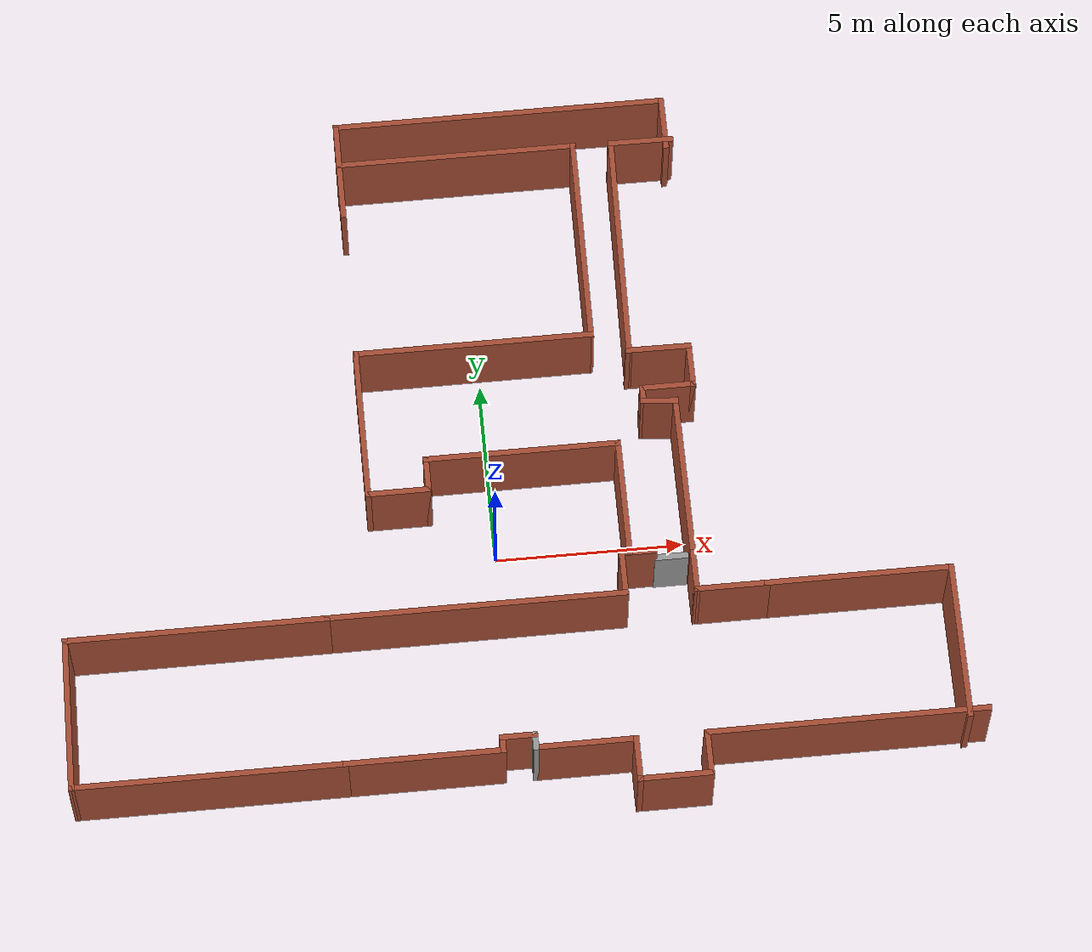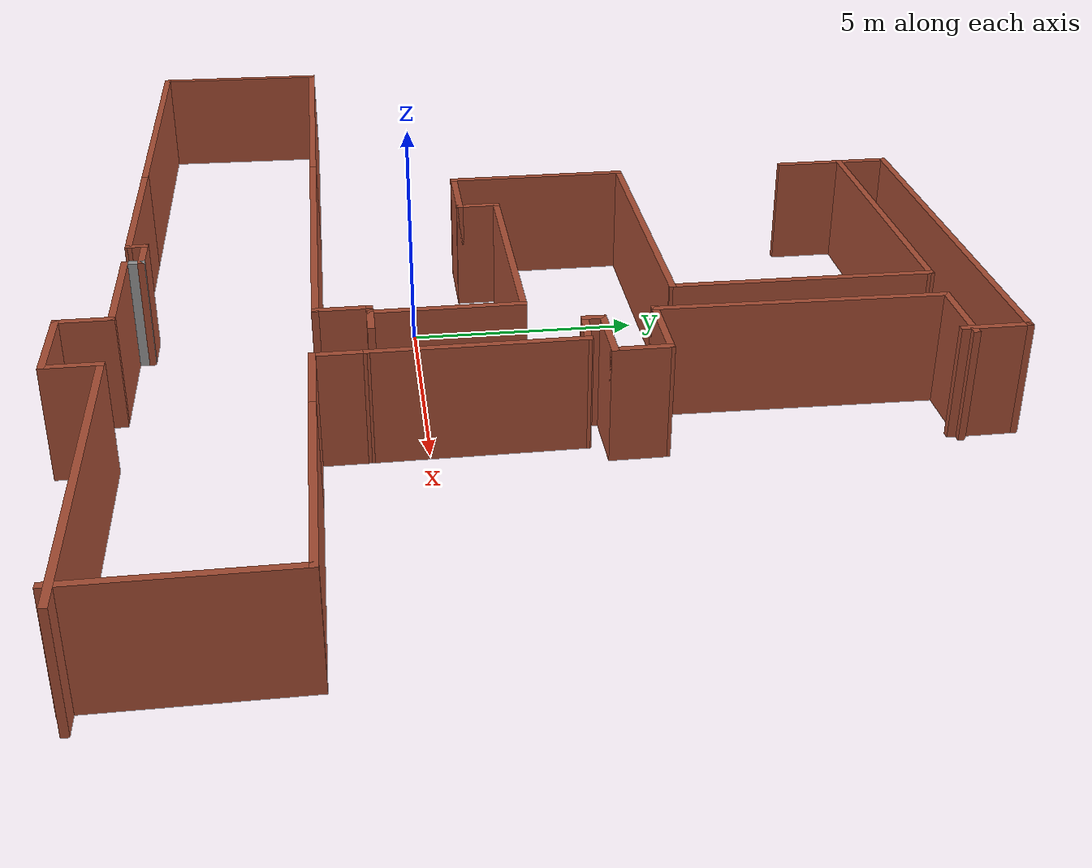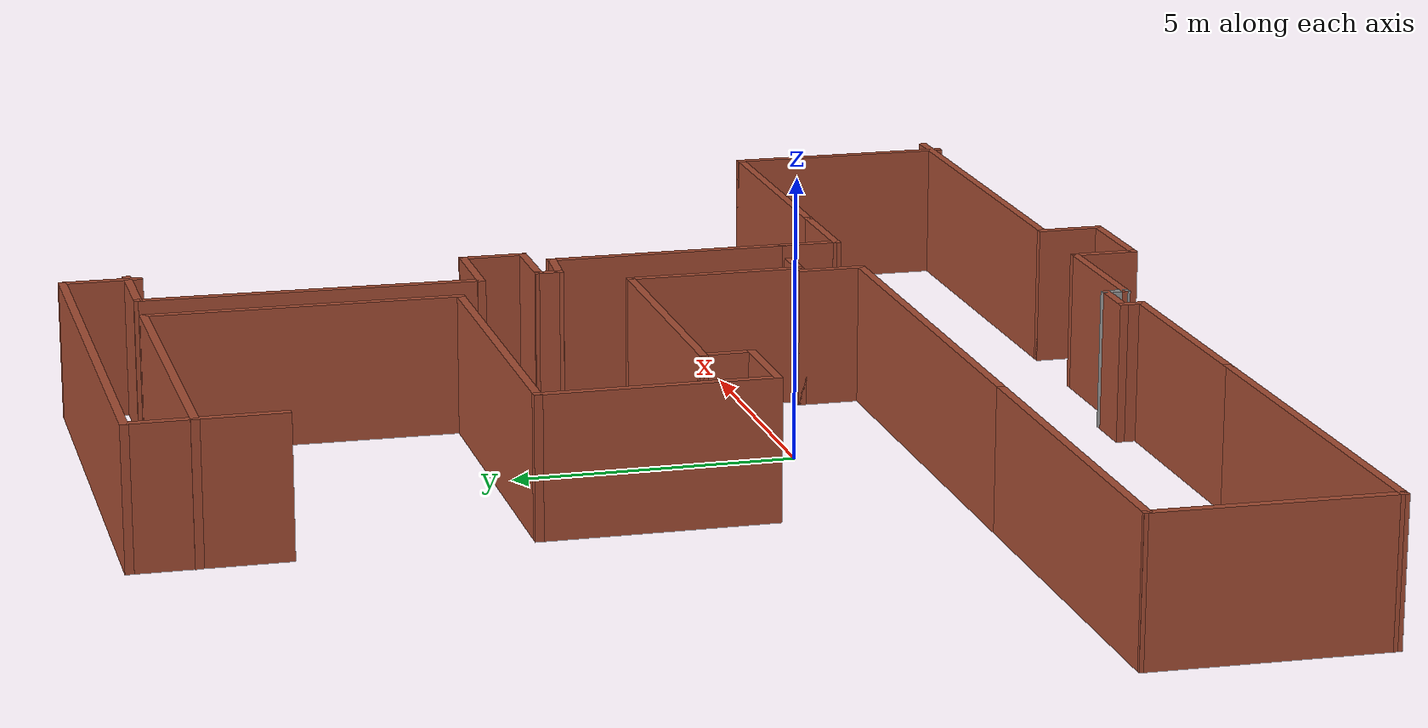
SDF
<?xml version='1.0'?>
<sdf version='1.7'>
  <model name='F1A1'>
    <pose>0.358057 2.33732 0 0 -0 0</pose>
    <link name='Door_0'>
      <collision name='Door_0_Collision'>
        <geometry>
          <box>
            <size>0.9 0.17 2</size>
          </box>
        </geometry>
        <pose>0 0 1 0 -0 0</pose>
      </collision>
      <visual name='Door_0_Visual'>
        <pose>0 0 1 0 -0 0</pose>
        <geometry>
          <box>
            <size>0.9 0.17 2</size>
          </box>
        </geometry>
        <material>
          <script>
            <uri>file://media/materials/scripts/gazebo.material</uri>
            <name>Gazebo/Grey</name>
          </script>
        </material>
      </visual>
      <pose>4.18025 -3.39198 0 0 -0 0</pose>
    </link>
    <link name='Wall_0'>
      <collision name='Wall_0_Collision'>
        <geometry>
          <box>
            <size>1 0.15 2.5</size>
          </box>
        </geometry>
        <pose>0 0 1.25 0 -0 0</pose>
      </collision>
      <visual name='Wall_0_Visual'>
        <pose>0 0 1.25 0 -0 0</pose>
        <geometry>
          <box>
            <size>1 0.15 2.5</size>
          </box>
        </geometry>
        <material>
          <script>
            <uri>file://media/materials/scripts/gazebo.material</uri>
            <name>Gazebo/Bricks</name>
          </script>
          <ambient>1 1 1 1</ambient>
        </material>
        <meta>
          <layer>0</layer>
        </meta>
      </visual>
      <pose>3.28569 -3.37459 0 0 -0 3.14159</pose>
    </link>
    <link name='Wall_1'>
      <collision name='Wall_1_Collision'>
        <geometry>
          <box>
            <size>1.25 0.15 2.5</size>
          </box>
        </geometry>
        <pose>0 0 1.25 0 -0 0</pose>
      </collision>
      <visual name='Wall_1_Visual'>
        <pose>0 0 1.25 0 -0 0</pose>
        <geometry>
          <box>
            <size>1.25 0.15 2.5</size>
          </box>
        </geometry>
        <material>
          <script>
            <uri>file://media/materials/scripts/gazebo.material</uri>
            <name>Gazebo/Bricks</name>
          </script>
          <ambient>1 1 1 1</ambient>
        </material>
        <meta>
          <layer>0</layer>
        </meta>
      </visual>
      <pose>2.86069 -3.92459 0 0 -0 -1.5708</pose>
    </link>
    <link name='Wall_10'>
      <collision name='Wall_10_Collision'>
        <geometry>
          <box>
            <size>1 0.15 2.5</size>
          </box>
        </geometry>
        <pose>0 0 1.25 0 -0 0</pose>
      </collision>
      <visual name='Wall_10_Visual'>
        <pose>0 0 1.25 0 -0 0</pose>
        <geometry>
          <box>
            <size>1 0.15 2.5</size>
          </box>
        </geometry>
        <material>
          <script>
            <uri>file://media/materials/scripts/gazebo.material</uri>
            <name>Gazebo/Bricks</name>
          </script>
          <ambient>1 1 1 1</ambient>
        </material>
        <meta>
          <layer>0</layer>
        </meta>
      </visual>
      <pose>-0.29922 -8.16429 0 0 -0 3.14159</pose>
    </link>
    <link name='Wall_11'>
      <collision name='Wall_11_Collision'>
        <geometry>
          <box>
            <size>0.5 0.15 2.5</size>
          </box>
        </geometry>
        <pose>0 0 1.25 0 -0 0</pose>
      </collision>
      <visual name='Wall_11_Visual'>
        <pose>0 0 1.25 0 -0 0</pose>
        <geometry>
          <box>
            <size>0.5 0.15 2.5</size>
          </box>
        </geometry>
        <material>
          <script>
            <uri>file://media/materials/scripts/gazebo.material</uri>
            <name>Gazebo/Bricks</name>
          </script>
          <ambient>1 1 1 1</ambient>
        </material>
        <meta>
          <layer>0</layer>
        </meta>
      </visual>
      <pose>-0.72422 -8.33929 0 0 -0 -1.5708</pose>
    </link>
    <link name='Wall_12'>
      <collision name='Wall_12_Collision'>
        <geometry>
          <box>
            <size>4.25 0.15 2.5</size>
          </box>
        </geometry>
        <pose>0 0 1.25 0 -0 0</pose>
      </collision>
      <visual name='Wall_12_Visual'>
        <pose>0 0 1.25 0 -0 0</pose>
        <geometry>
          <box>
            <size>4.25 0.15 2.5</size>
          </box>
        </geometry>
        <material>
          <script>
            <uri>file://media/materials/scripts/gazebo.material</uri>
            <name>Gazebo/Bricks</name>
          </script>
          <ambient>1 1 1 1</ambient>
        </material>
        <meta>
          <layer>0</layer>
        </meta>
      </visual>
      <pose>-2.77422 -8.51429 0 0 -0 3.14159</pose>
    </link>
    <link name='Wall_2'>
      <collision name='Wall_2_Collision'>
        <geometry>
          <box>
            <size>8 0.15 2.5</size>
          </box>
        </geometry>
        <pose>0 0 1.25 0 -0 0</pose>
      </collision>
      <visual name='Wall_2_Visual'>
        <pose>0 0 1.25 0 -0 0</pose>
        <geometry>
          <box>
            <size>8 0.15 2.5</size>
          </box>
        </geometry>
        <material>
          <script>
            <uri>file://media/materials/scripts/gazebo.material</uri>
            <name>Gazebo/Bricks</name>
          </script>
          <ambient>1 1 1 1</ambient>
        </material>
        <meta>
          <layer>0</layer>
        </meta>
      </visual>
      <pose>-1.06431 -4.47459 0 0 -0 3.14159</pose>
    </link>
    <link name='Wall_21'>
      <collision name='Wall_21_Collision'>
        <geometry>
          <box>
            <size>1.5 0.15 2.5</size>
          </box>
        </geometry>
        <pose>0 0 1.25 0 -0 0</pose>
      </collision>
      <visual name='Wall_21_Visual'>
        <pose>0 0 1.25 0 -0 0</pose>
        <geometry>
          <box>
            <size>1.5 0.15 2.5</size>
          </box>
        </geometry>
        <material>
          <script>
            <uri>file://media/materials/scripts/gazebo.material</uri>
            <name>Gazebo/Bricks</name>
          </script>
          <ambient>1 1 1 1</ambient>
        </material>
        <meta>
          <layer>0</layer>
        </meta>
      </visual>
      <pose>4.54927 1.25298 0 0 -0 0</pose>
    </link>
    <link name='Wall_22'>
      <collision name='Wall_22_Collision'>
        <geometry>
          <box>
            <size>1.25 0.15 2.5</size>
          </box>
        </geometry>
        <pose>0 0 1.25 0 -0 0</pose>
      </collision>
      <visual name='Wall_22_Visual'>
        <pose>0 0 1.25 0 -0 0</pose>
        <geometry>
          <box>
            <size>1.25 0.15 2.5</size>
          </box>
        </geometry>
        <material>
          <script>
            <uri>file://media/materials/scripts/gazebo.material</uri>
            <name>Gazebo/Bricks</name>
          </script>
          <ambient>1 1 1 1</ambient>
        </material>
        <meta>
          <layer>0</layer>
        </meta>
      </visual>
      <pose>5.22427 1.80298 0 0 -0 1.5708</pose>
    </link>
    <link name='Wall_46'>
      <collision name='Wall_46_Collision'>
        <geometry>
          <box>
            <size>1.5 0.15 2.5</size>
          </box>
        </geometry>
        <pose>0 0 1.25 0 -0 0</pose>
      </collision>
      <visual name='Wall_46_Visual'>
        <pose>0 0 1.25 0 -0 0</pose>
        <geometry>
          <box>
            <size>1.5 0.15 2.5</size>
          </box>
        </geometry>
        <material>
          <script>
            <uri>file://media/materials/scripts/gazebo.material</uri>
            <name>Gazebo/Bricks</name>
          </script>
          <ambient>1 1 1 1</ambient>
        </material>
        <meta>
          <layer>0</layer>
        </meta>
      </visual>
      <pose>5.22427 8.93929 0 0 -0 1.5708</pose>
    </link>
    <link name='Wall_47'>
      <collision name='Wall_47_Collision'>
        <geometry>
          <box>
            <size>9 0.15 2.5</size>
          </box>
        </geometry>
        <pose>0 0 1.25 0 -0 0</pose>
      </collision>
      <visual name='Wall_47_Visual'>
        <pose>0 0 1.25 0 -0 0</pose>
        <geometry>
          <box>
            <size>9 0.15 2.5</size>
          </box>
        </geometry>
        <material>
          <script>
            <uri>file://media/materials/scripts/gazebo.material</uri>
            <name>Gazebo/Bricks</name>
          </script>
          <ambient>1 1 1 1</ambient>
        </material>
        <meta>
          <layer>0</layer>
        </meta>
      </visual>
      <pose>0.799273 9.61429 0 0 -0 3.14159</pose>
    </link>
    <link name='Wall_48'>
      <collision name='Wall_48_Collision'>
        <geometry>
          <box>
            <size>2.75 0.15 2.5</size>
          </box>
        </geometry>
        <pose>0 0 1.25 0 -0 0</pose>
      </collision>
      <visual name='Wall_48_Visual'>
        <pose>0 0 1.25 0 -0 0</pose>
        <geometry>
          <box>
            <size>2.75 0.15 2.5</size>
          </box>
        </geometry>
        <material>
          <script>
            <uri>file://media/materials/scripts/gazebo.material</uri>
            <name>Gazebo/Bricks</name>
          </script>
          <ambient>1 1 1 1</ambient>
        </material>
        <meta>
          <layer>0</layer>
        </meta>
      </visual>
      <pose>-3.62573 8.31429 0 0 -0 -1.5708</pose>
    </link>
    <link name='Wall_5'>
      <collision name='Wall_5_Collision'>
        <geometry>
          <box>
            <size>2 0.15 2.5</size>
          </box>
        </geometry>
        <pose>0 0 1.25 0 -0 0</pose>
      </collision>
      <visual name='Wall_5_Visual'>
        <pose>0 0 1.25 0 -0 0</pose>
        <geometry>
          <box>
            <size>2 0.15 2.5</size>
          </box>
        </geometry>
        <material>
          <script>
            <uri>file://media/materials/scripts/gazebo.material</uri>
            <name>Gazebo/Bricks</name>
          </script>
          <ambient>1 1 1 1</ambient>
        </material>
        <meta>
          <layer>0</layer>
        </meta>
      </visual>
      <pose>5.64927 -4.54702 0 0 -0 3.14159</pose>
    </link>
    <link name='Wall_52'>
      <collision name='Wall_52_Collision'>
        <geometry>
          <box>
            <size>5.71426 0.15 2.5</size>
          </box>
        </geometry>
        <pose>0 0 1.25 0 -0 0</pose>
      </collision>
      <visual name='Wall_52_Visual'>
        <pose>0 0 1.25 0 -0 0</pose>
        <geometry>
          <box>
            <size>5.71426 0.15 2.5</size>
          </box>
        </geometry>
        <material>
          <script>
            <uri>file://media/materials/scripts/gazebo.material</uri>
            <name>Gazebo/Bricks</name>
          </script>
          <ambient>1 1 1 1</ambient>
        </material>
        <meta>
          <layer>0</layer>
        </meta>
      </visual>
      <pose>2.68615 5.70782 0 0 -0 -1.57934</pose>
    </link>
    <link name='Wall_53'>
      <collision name='Wall_53_Collision'>
        <geometry>
          <box>
            <size>6.44182 0.15 2.5</size>
          </box>
        </geometry>
        <pose>0 0 1.25 0 -0 0</pose>
      </collision>
      <visual name='Wall_53_Visual'>
        <pose>0 0 1.25 0 -0 0</pose>
        <geometry>
          <box>
            <size>6.44182 0.15 2.5</size>
          </box>
        </geometry>
        <material>
          <script>
            <uri>file://media/materials/scripts/gazebo.material</uri>
            <name>Gazebo/Bricks</name>
          </script>
          <ambient>1 1 1 1</ambient>
        </material>
        <meta>
          <layer>0</layer>
        </meta>
      </visual>
      <pose>-0.483526 2.92577 0 0 -0 3.14159</pose>
    </link>
    <link name='Wall_57'>
      <collision name='Wall_57_Collision'>
        <geometry>
          <box>
            <size>4.17991 0.15 2.5</size>
          </box>
        </geometry>
        <pose>0 0 1.25 0 -0 0</pose>
      </collision>
      <visual name='Wall_57_Visual'>
        <pose>0 0 1.25 0 -0 0</pose>
        <geometry>
          <box>
            <size>4.17991 0.15 2.5</size>
          </box>
        </geometry>
        <material>
          <script>
            <uri>file://media/materials/scripts/gazebo.material</uri>
            <name>Gazebo/Bricks</name>
          </script>
          <ambient>1 1 1 1</ambient>
        </material>
        <meta>
          <layer>0</layer>
        </meta>
      </visual>
      <pose>-3.62944 0.910864 0 0 -0 -1.5708</pose>
    </link>
    <link name='Wall_58'>
      <collision name='Wall_58_Collision'>
        <geometry>
          <box>
            <size>1.75 0.15 2.5</size>
          </box>
        </geometry>
        <pose>0 0 1.25 0 -0 0</pose>
      </collision>
      <visual name='Wall_58_Visual'>
        <pose>0 0 1.25 0 -0 0</pose>
        <geometry>
          <box>
            <size>1.75 0.15 2.5</size>
          </box>
        </geometry>
        <material>
          <script>
            <uri>file://media/materials/scripts/gazebo.material</uri>
            <name>Gazebo/Bricks</name>
          </script>
          <ambient>1 1 1 1</ambient>
        </material>
        <meta>
          <layer>0</layer>
        </meta>
      </visual>
      <pose>-2.82944 -1.10404 0 0 -0 0</pose>
    </link>
    <link name='Wall_59'>
      <collision name='Wall_59_Collision'>
        <geometry>
          <box>
            <size>1 0.15 2.5</size>
          </box>
        </geometry>
        <pose>0 0 1.25 0 -0 0</pose>
      </collision>
      <visual name='Wall_59_Visual'>
        <pose>0 0 1.25 0 -0 0</pose>
        <geometry>
          <box>
            <size>1 0.15 2.5</size>
          </box>
        </geometry>
        <material>
          <script>
            <uri>file://media/materials/scripts/gazebo.material</uri>
            <name>Gazebo/Bricks</name>
          </script>
          <ambient>1 1 1 1</ambient>
        </material>
        <meta>
          <layer>0</layer>
        </meta>
      </visual>
      <pose>-2.02944 -0.679041 0 0 -0 1.5708</pose>
    </link>
    <link name='Wall_6'>
      <collision name='Wall_6_Collision'>
        <geometry>
          <box>
            <size>1.18134 0.15 2.5</size>
          </box>
        </geometry>
        <pose>0 0 1.25 0 -0 0</pose>
      </collision>
      <visual name='Wall_6_Visual'>
        <pose>0 0 1.25 0 -0 0</pose>
        <geometry>
          <box>
            <size>1.18134 0.15 2.5</size>
          </box>
        </geometry>
        <material>
          <script>
            <uri>file://media/materials/scripts/gazebo.material</uri>
            <name>Gazebo/Bricks</name>
          </script>
          <ambient>1 1 1 1</ambient>
        </material>
        <meta>
          <layer>0</layer>
        </meta>
      </visual>
      <pose>4.72469 -4.03135 0 0 -0 1.56998</pose>
    </link>
    <link name='Wall_60'>
      <collision name='Wall_60_Collision'>
        <geometry>
          <box>
            <size>5.25 0.15 2.5</size>
          </box>
        </geometry>
        <pose>0 0 1.25 0 -0 0</pose>
      </collision>
      <visual name='Wall_60_Visual'>
        <pose>0 0 1.25 0 -0 0</pose>
        <geometry>
          <box>
            <size>5.25 0.15 2.5</size>
          </box>
        </geometry>
        <material>
          <script>
            <uri>file://media/materials/scripts/gazebo.material</uri>
            <name>Gazebo/Bricks</name>
          </script>
          <ambient>1 1 1 1</ambient>
        </material>
        <meta>
          <layer>0</layer>
        </meta>
      </visual>
      <pose>0.520563 -0.254041 0 0 -0 0</pose>
    </link>
    <link name='Wall_63'>
      <collision name='Wall_63_Collision'>
        <geometry>
          <box>
            <size>3.25 0.15 2.5</size>
          </box>
        </geometry>
        <pose>0 0 1.25 0 -0 0</pose>
      </collision>
      <visual name='Wall_63_Visual'>
        <pose>0 0 1.25 0 -0 0</pose>
        <geometry>
          <box>
            <size>3.25 0.15 2.5</size>
          </box>
        </geometry>
        <material>
          <script>
            <uri>file://media/materials/scripts/gazebo.material</uri>
            <name>Gazebo/Bricks</name>
          </script>
          <ambient>1 1 1 1</ambient>
        </material>
        <meta>
          <layer>0</layer>
        </meta>
      </visual>
      <pose>3.07056 -1.80404 0 0 -0 -1.5708</pose>
    </link>
    <link name='Wall_65'>
      <collision name='Wall_65_Collision'>
        <geometry>
          <box>
            <size>1.25 0.15 2.5</size>
          </box>
        </geometry>
        <pose>0 0 1.25 0 -0 0</pose>
      </collision>
      <visual name='Wall_65_Visual'>
        <pose>0 0 1.25 0 -0 0</pose>
        <geometry>
          <box>
            <size>1.25 0.15 2.5</size>
          </box>
        </geometry>
        <material>
          <script>
            <uri>file://media/materials/scripts/gazebo.material</uri>
            <name>Gazebo/Bricks</name>
          </script>
          <ambient>1 1 1 1</ambient>
        </material>
        <meta>
          <layer>0</layer>
        </meta>
      </visual>
      <pose>2.72578 -9.06429 0 0 -0 -1.5708</pose>
    </link>
    <link name='Wall_66'>
      <collision name='Wall_66_Collision'>
        <geometry>
          <box>
            <size>2 0.15 2.5</size>
          </box>
        </geometry>
        <pose>0 0 1.25 0 -0 0</pose>
      </collision>
      <visual name='Wall_66_Visual'>
        <pose>0 0 1.25 0 -0 0</pose>
        <geometry>
          <box>
            <size>2 0.15 2.5</size>
          </box>
        </geometry>
        <material>
          <script>
            <uri>file://media/materials/scripts/gazebo.material</uri>
            <name>Gazebo/Bricks</name>
          </script>
          <ambient>1 1 1 1</ambient>
        </material>
        <meta>
          <layer>0</layer>
        </meta>
      </visual>
      <pose>3.65078 -9.61429 0 0 -0 0</pose>
    </link>
    <link name='Wall_67'>
      <collision name='Wall_67_Collision'>
        <geometry>
          <box>
            <size>1.25 0.15 2.5</size>
          </box>
        </geometry>
        <pose>0 0 1.25 0 -0 0</pose>
      </collision>
      <visual name='Wall_67_Visual'>
        <pose>0 0 1.25 0 -0 0</pose>
        <geometry>
          <box>
            <size>1.25 0.15 2.5</size>
          </box>
        </geometry>
        <material>
          <script>
            <uri>file://media/materials/scripts/gazebo.material</uri>
            <name>Gazebo/Bricks</name>
          </script>
          <ambient>1 1 1 1</ambient>
        </material>
        <meta>
          <layer>0</layer>
        </meta>
      </visual>
      <pose>4.57578 -9.06429 0 0 -0 1.5708</pose>
    </link>
    <link name='Wall_68'>
      <collision name='Wall_68_Collision'>
        <geometry>
          <box>
            <size>7.5 0.15 2.5</size>
          </box>
        </geometry>
        <pose>0 0 1.25 0 -0 0</pose>
      </collision>
      <visual name='Wall_68_Visual'>
        <pose>0 0 1.25 0 -0 0</pose>
        <geometry>
          <box>
            <size>7.5 0.15 2.5</size>
          </box>
        </geometry>
        <material>
          <script>
            <uri>file://media/materials/scripts/gazebo.material</uri>
            <name>Gazebo/Bricks</name>
          </script>
          <ambient>1 1 1 1</ambient>
        </material>
        <meta>
          <layer>0</layer>
        </meta>
      </visual>
      <pose>8.25078 -8.51429 0 0 -0 0</pose>
    </link>
    <link name='Wall_70'>
      <collision name='Wall_70_Collision'>
        <geometry>
          <box>
            <size>5 0.15 2.5</size>
          </box>
        </geometry>
        <pose>0 0 1.25 0 -0 0</pose>
      </collision>
      <visual name='Wall_70_Visual'>
        <pose>0 0 1.25 0 -0 0</pose>
        <geometry>
          <box>
            <size>5 0.15 2.5</size>
          </box>
        </geometry>
        <material>
          <script>
            <uri>file://media/materials/scripts/gazebo.material</uri>
            <name>Gazebo/Bricks</name>
          </script>
          <ambient>1 1 1 1</ambient>
        </material>
        <meta>
          <layer>0</layer>
        </meta>
      </visual>
      <pose>8.99927 -4.54702 0 0 -0 0</pose>
    </link>
    <link name='Wall_72'>
      <collision name='Wall_72_Collision'>
        <geometry>
          <box>
            <size>4.25 0.15 2.5</size>
          </box>
        </geometry>
        <pose>0 0 1.25 0 -0 0</pose>
      </collision>
      <visual name='Wall_72_Visual'>
        <pose>0 0 1.25 0 -0 0</pose>
        <geometry>
          <box>
            <size>4.25 0.15 2.5</size>
          </box>
        </geometry>
        <material>
          <script>
            <uri>file://media/materials/scripts/gazebo.material</uri>
            <name>Gazebo/Bricks</name>
          </script>
          <ambient>1 1 1 1</ambient>
        </material>
        <meta>
          <layer>0</layer>
        </meta>
      </visual>
      <pose>11.4243 -6.59702 0 0 -0 -1.5708</pose>
    </link>
    <link name='Wall_74'>
      <collision name='Wall_74_Collision'>
        <geometry>
          <box>
            <size>7 0.15 2.5</size>
          </box>
        </geometry>
        <pose>0 0 1.25 0 -0 0</pose>
      </collision>
      <visual name='Wall_74_Visual'>
        <pose>0 0 1.25 0 -0 0</pose>
        <geometry>
          <box>
            <size>7 0.15 2.5</size>
          </box>
        </geometry>
        <material>
          <script>
            <uri>file://media/materials/scripts/gazebo.material</uri>
            <name>Gazebo/Bricks</name>
          </script>
          <ambient>1 1 1 1</ambient>
        </material>
        <meta>
          <layer>0</layer>
        </meta>
      </visual>
      <pose>-8.41431 -4.47459 0 0 -0 3.14159</pose>
    </link>
    <link name='Wall_76'>
      <collision name='Wall_76_Collision'>
        <geometry>
          <box>
            <size>7.25 0.15 2.5</size>
          </box>
        </geometry>
        <pose>0 0 1.25 0 -0 0</pose>
      </collision>
      <visual name='Wall_76_Visual'>
        <pose>0 0 1.25 0 -0 0</pose>
        <geometry>
          <box>
            <size>7.25 0.15 2.5</size>
          </box>
        </geometry>
        <material>
          <script>
            <uri>file://media/materials/scripts/gazebo.material</uri>
            <name>Gazebo/Bricks</name>
          </script>
          <ambient>1 1 1 1</ambient>
        </material>
        <meta>
          <layer>0</layer>
        </meta>
      </visual>
      <pose>-8.37422 -8.51429 0 0 -0 3.14159</pose>
    </link>
    <link name='Wall_78'>
      <collision name='Wall_78_Collision'>
        <geometry>
          <box>
            <size>4.19059 0.15 2.5</size>
          </box>
        </geometry>
        <pose>0 0 1.25 0 -0 0</pose>
      </collision>
      <visual name='Wall_78_Visual'>
        <pose>0 0 1.25 0 -0 0</pose>
        <geometry>
          <box>
            <size>4.19059 0.15 2.5</size>
          </box>
        </geometry>
        <material>
          <script>
            <uri>file://media/materials/scripts/gazebo.material</uri>
            <name>Gazebo/Bricks</name>
          </script>
          <ambient>1 1 1 1</ambient>
        </material>
        <meta>
          <layer>0</layer>
        </meta>
      </visual>
      <pose>-11.8818 -6.49444 0 0 -0 -1.59181</pose>
    </link>
    <link name='Wall_8'>
      <collision name='Wall_8_Collision'>
        <geometry>
          <box>
            <size>2.75 0.15 2.5</size>
          </box>
        </geometry>
        <pose>0 0 1.25 0 -0 0</pose>
      </collision>
      <visual name='Wall_8_Visual'>
        <pose>0 0 1.25 0 -0 0</pose>
        <geometry>
          <box>
            <size>2.75 0.15 2.5</size>
          </box>
        </geometry>
        <material>
          <script>
            <uri>file://media/materials/scripts/gazebo.material</uri>
            <name>Gazebo/Bricks</name>
          </script>
          <ambient>1 1 1 1</ambient>
        </material>
        <meta>
          <layer>0</layer>
        </meta>
      </visual>
      <pose>1.42578 -8.51429 0 0 -0 3.14159</pose>
    </link>
    <link name='Wall_80'>
      <collision name='Wall_80_Collision'>
        <geometry>
          <box>
            <size>1.00361 0.15 2.5</size>
          </box>
        </geometry>
        <pose>0 0 1.25 0 -0 0</pose>
      </collision>
      <visual name='Wall_80_Visual'>
        <pose>0 0 1.25 0 -0 0</pose>
        <geometry>
          <box>
            <size>1.00361 0.15 2.5</size>
          </box>
        </geometry>
        <material>
          <script>
            <uri>file://media/materials/scripts/gazebo.material</uri>
            <name>Gazebo/Bricks</name>
          </script>
          <ambient>1 1 1 1</ambient>
        </material>
        <meta>
          <layer>0</layer>
        </meta>
      </visual>
      <pose>4.2863 0.849866 0 0 -0 3.06107</pose>
    </link>
    <link name='Wall_81'>
      <collision name='Wall_81_Collision'>
        <geometry>
          <box>
            <size>0.519022 0.15 2.5</size>
          </box>
        </geometry>
        <pose>0 0 1.25 0 -0 0</pose>
      </collision>
      <visual name='Wall_81_Visual'>
        <pose>0 0 1.25 0 -0 0</pose>
        <geometry>
          <box>
            <size>0.519022 0.15 2.5</size>
          </box>
        </geometry>
        <material>
          <script>
            <uri>file://media/materials/scripts/gazebo.material</uri>
            <name>Gazebo/Bricks</name>
          </script>
          <ambient>1 1 1 1</ambient>
        </material>
        <meta>
          <layer>0</layer>
        </meta>
      </visual>
      <pose>3.86758 1.06859 0 0 -0 1.53451</pose>
    </link>
    <link name='Wall_84'>
      <collision name='Wall_84_Collision'>
        <geometry>
          <box>
            <size>4.48124 0.15 2.5</size>
          </box>
        </geometry>
        <pose>0 0 1.25 0 -0 0</pose>
      </collision>
      <visual name='Wall_84_Visual'>
        <pose>0 0 1.25 0 -0 0</pose>
        <geometry>
          <box>
            <size>4.48124 0.15 2.5</size>
          </box>
        </geometry>
        <material>
          <script>
            <uri>file://media/materials/scripts/gazebo.material</uri>
            <name>Gazebo/Bricks</name>
          </script>
          <ambient>1 1 1 1</ambient>
        </material>
        <meta>
          <layer>0</layer>
        </meta>
      </visual>
      <pose>4.71842 -1.33123 0 0 -0 1.57389</pose>
    </link>
    <link name='Wall_86'>
      <collision name='Wall_86_Collision'>
        <geometry>
          <box>
            <size>6.5 0.15 2.5</size>
          </box>
        </geometry>
        <pose>0 0 1.25 0 -0 0</pose>
      </collision>
      <visual name='Wall_86_Visual'>
        <pose>0 0 1.25 0 -0 0</pose>
        <geometry>
          <box>
            <size>6.5 0.15 2.5</size>
          </box>
        </geometry>
        <material>
          <script>
            <uri>file://media/materials/scripts/gazebo.material</uri>
            <name>Gazebo/Bricks</name>
          </script>
          <ambient>1 1 1 1</ambient>
        </material>
        <meta>
          <layer>0</layer>
        </meta>
      </visual>
      <pose>-0.46508 8.48987 0 0 -0 3.14159</pose>
    </link>
    <link name='Wall_88'>
      <collision name='Wall_88_Collision'>
        <geometry>
          <box>
            <size>1.76967 0.15 2.5</size>
          </box>
        </geometry>
        <pose>0 0 1.25 0 -0 0</pose>
      </collision>
      <visual name='Wall_88_Visual'>
        <pose>0 0 1.25 0 -0 0</pose>
        <geometry>
          <box>
            <size>1.76967 0.15 2.5</size>
          </box>
        </geometry>
        <material>
          <script>
            <uri>file://media/materials/scripts/gazebo.material</uri>
            <name>Gazebo/Bricks</name>
          </script>
          <ambient>1 1 1 1</ambient>
        </material>
        <meta>
          <layer>0</layer>
        </meta>
      </visual>
      <pose>4.41446 2.35868 0 0 -0 3.13455</pose>
    </link>
    <link name='Wall_9'>
      <collision name='Wall_9_Collision'>
        <geometry>
          <box>
            <size>0.5 0.15 2.5</size>
          </box>
        </geometry>
        <pose>0 0 1.25 0 -0 0</pose>
      </collision>
      <visual name='Wall_9_Visual'>
        <pose>0 0 1.25 0 -0 0</pose>
        <geometry>
          <box>
            <size>0.5 0.15 2.5</size>
          </box>
        </geometry>
        <material>
          <script>
            <uri>file://media/materials/scripts/gazebo.material</uri>
            <name>Gazebo/Grey</name>
          </script>
          <ambient>1 1 1 1</ambient>
        </material>
        <meta>
          <layer>0</layer>
        </meta>
      </visual>
      <pose>0.12578 -8.33929 0 0 -0 1.5708</pose>
    </link>
    <link name='Wall_90'>
      <collision name='Wall_90_Collision'>
        <geometry>
          <box>
            <size>6.25084 0.15 2.5</size>
          </box>
        </geometry>
        <pose>0 0 1.25 0 -0 0</pose>
      </collision>
      <visual name='Wall_90_Visual'>
        <pose>0 0 1.25 0 -0 0</pose>
        <geometry>
          <box>
            <size>6.25084 0.15 2.5</size>
          </box>
        </geometry>
        <material>
          <script>
            <uri>file://media/materials/scripts/gazebo.material</uri>
            <name>Gazebo/Bricks</name>
          </script>
          <ambient>1 1 1 1</ambient>
        </material>
        <meta>
          <layer>0</layer>
        </meta>
      </visual>
      <pose>3.68299 5.41439 0 0 -0 1.55193</pose>
    </link>
    <link name='Wall_91'>
      <collision name='Wall_91_Collision'>
        <geometry>
          <box>
            <size>1.76967 0.15 2.5</size>
          </box>
        </geometry>
        <pose>0 0 1.25 0 -0 0</pose>
      </collision>
      <visual name='Wall_91_Visual'>
        <pose>0 0 1.25 0 -0 0</pose>
        <geometry>
          <box>
            <size>1.76967 0.15 2.5</size>
          </box>
        </geometry>
        <material>
          <script>
            <uri>file://media/materials/scripts/gazebo.material</uri>
            <name>Gazebo/Bricks</name>
          </script>
          <ambient>1 1 1 1</ambient>
        </material>
        <meta>
          <layer>0</layer>
        </meta>
      </visual>
      <pose>4.55035 8.45868 0 0 -0 -0.007047</pose>
    </link>
    <static>1</static>
  </model>
</sdf>
